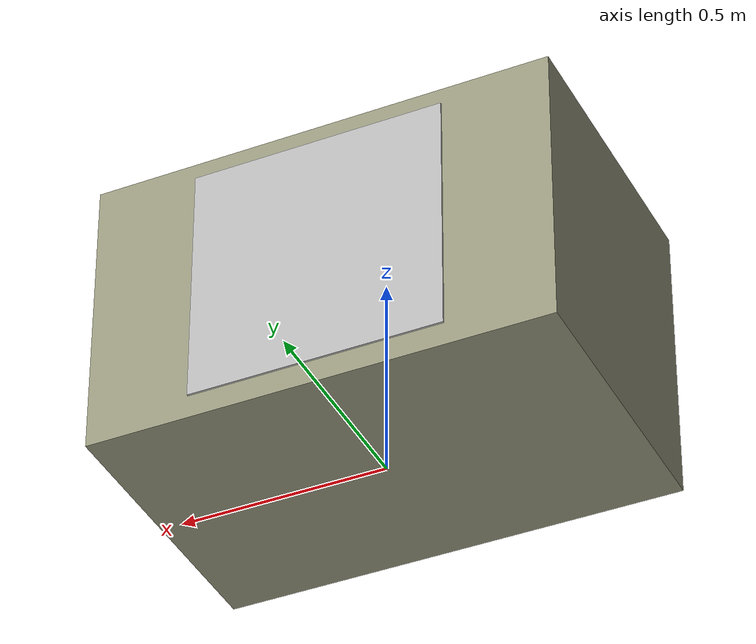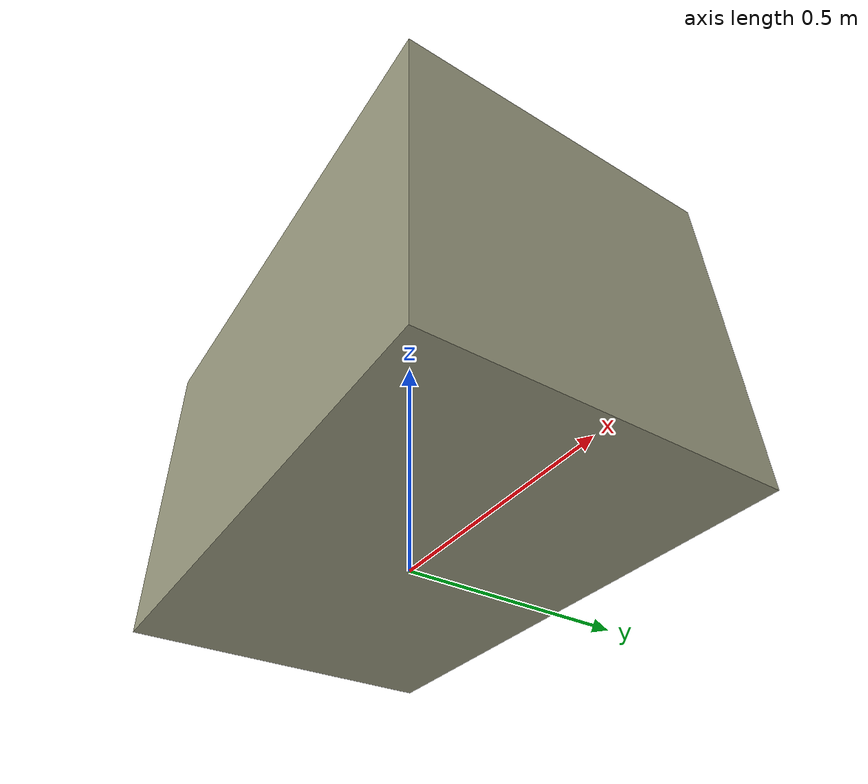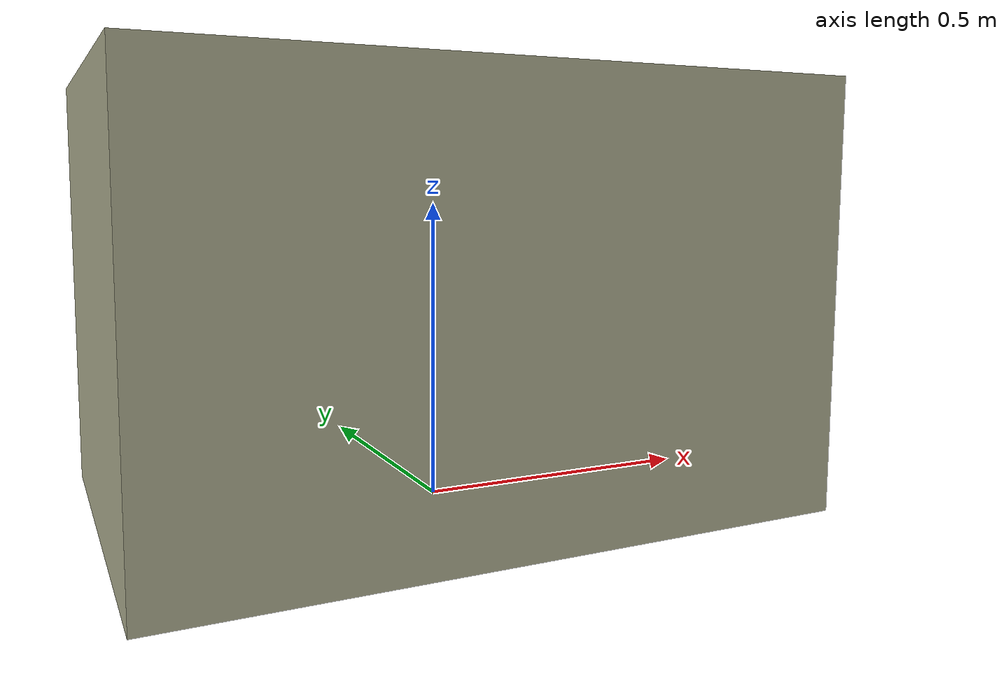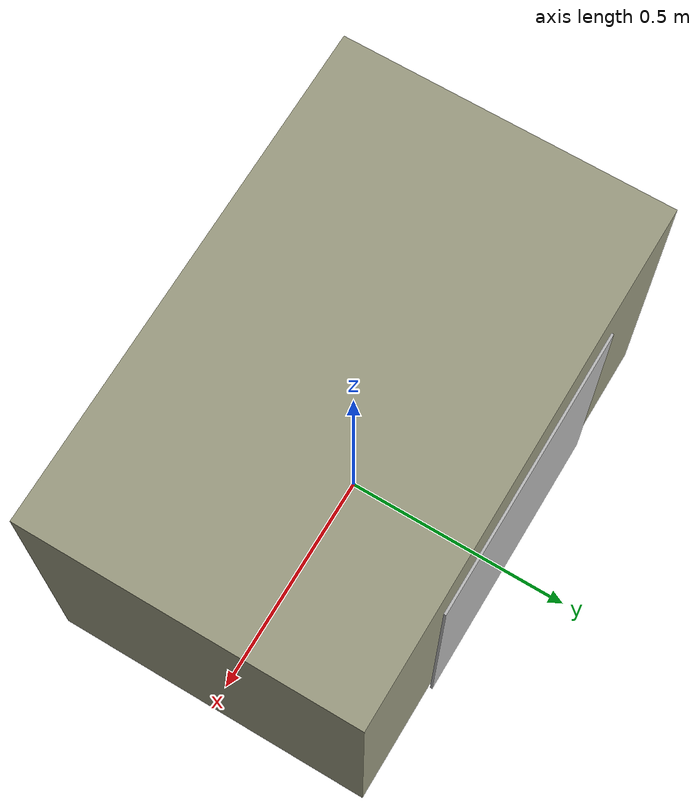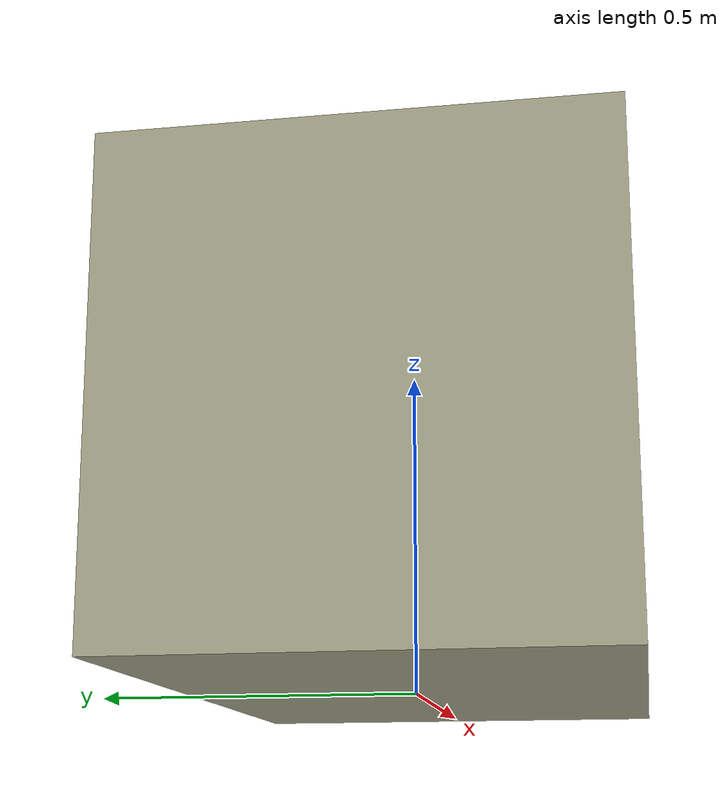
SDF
<?xml version="1.0" ?>
<sdf version="1.5">
  <model name="medium_box_qr2">
    <pose>0 0 0.35  0 0 0</pose>
    <static>false</static>
    <link name="link">
      <inertial>
        <mass>30.0</mass>
        <inertia>
          <ixx>1</ixx>
          <ixy>0</ixy>
          <ixz>0</ixz>
          <iyy>1</iyy>
          <iyz>0</iyz>
          <izz>1</izz>
        </inertia>
      </inertial>

      <collision name="collision">
        <geometry>
          <box>
              <size>1.10 0.70 0.70</size>
          </box>
        </geometry>
	      <surface>
          <contact>
            <ode>
              <max_vel>0.1</max_vel>
              <min_depth>0.001</min_depth>
            </ode>
          </contact>
        </surface>
      </collision>
      <visual name='visual'>
        <pose frame=''>0 0 0 0 -0 0</pose>
        <geometry>
          <box>
            <size>1.10 0.70 0.70</size>
          </box>
        </geometry>
        <material>
          <lighting>1</lighting>
          <script>
            <uri>file://media/materials/scripts/gazebo.material</uri>
            <name>Gazebo/Grey</name>
          </script>
          <shader type='pixel'>
            <normal_map>__default__</normal_map>
          </shader>
          <ambient>0.6 0.6 0.5 1</ambient>
          <diffuse>0.3 0.3 0.3 1</diffuse>
          <specular>0.01 0.01 0.01 1</specular>
          <emissive>0 0 0 1</emissive>
        </material>
        <transparency>0</transparency>
        <cast_shadows>1</cast_shadows>
      </visual>

      <visual name="visual_qr">
      <pose>0 0.36 0 0 0 0</pose>
        <geometry>
          <box>
            <size>0.6 0.005 0.6</size>
          </box>
        </geometry>
        <material>
          <script>
            <uri>model://medium_box_qr2/materials/scripts</uri>
            <uri>model://medium_box_qr2/materials/textures</uri>
            <name>QR_code/qr1</name>
          </script>
        </material>
      </visual>
    </link>
  </model>
</sdf>
